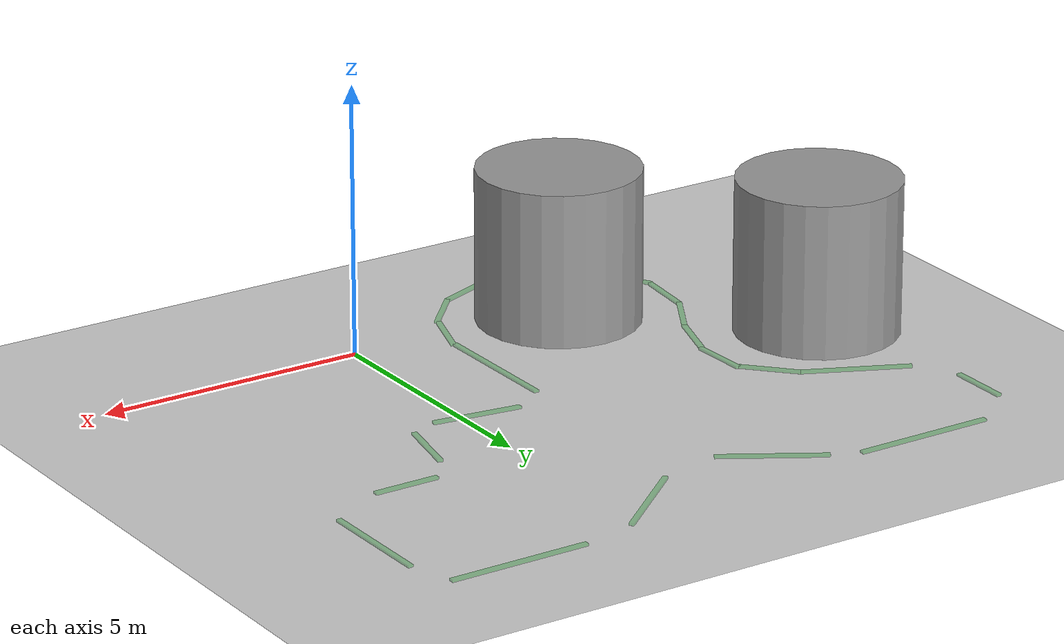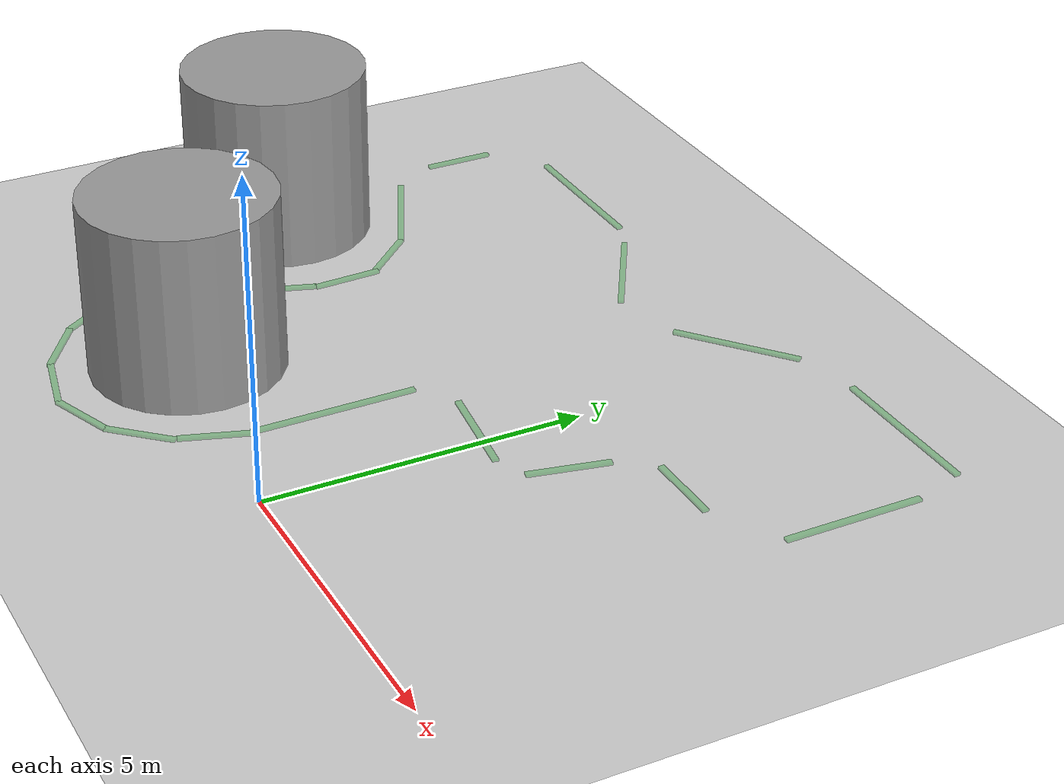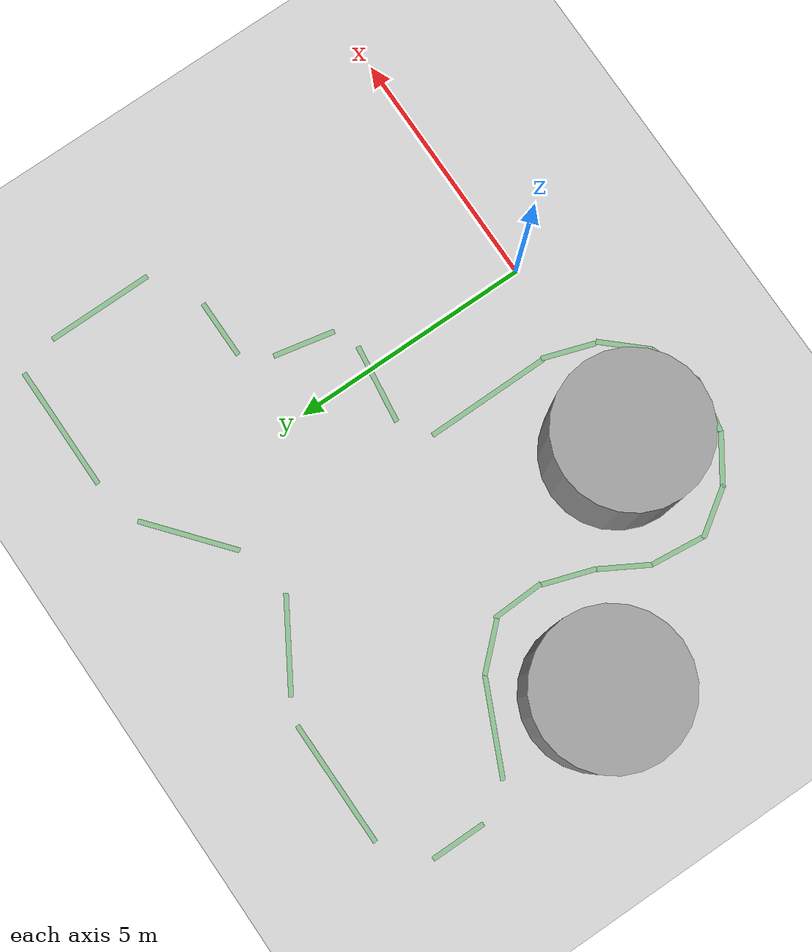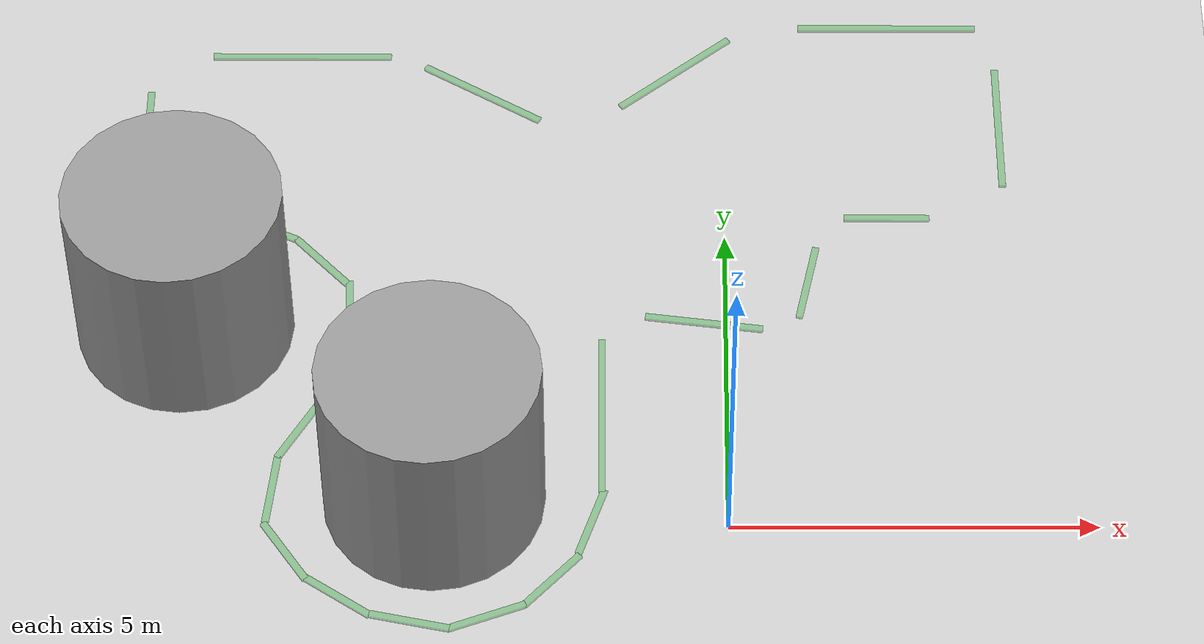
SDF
<sdf version="1.7">
 <world name="default">
  <model name="ground_plane">
   <static>1</static>
   <link name="link">
    <collision name="collision">
     <geometry><plane><normal>0 0 1</normal><size>100 100</size></plane></geometry>
     <surface>
      <contact><collide_bitmask>65535</collide_bitmask></contact>
      <friction><ode><mu>100</mu><mu2>50</mu2></ode></friction>
     </surface>
    </collision>
    <visual name="visual">
     <cast_shadows>0</cast_shadows>
     <geometry><plane><normal>0 0 1</normal><size>100 100</size></plane></geometry>
     <material>
      <script><uri>file://media/materials/scripts/gazebo.material</uri><name>Gazebo/Grey</name></script>
     </material>
    </visual>
   </link>
  </model>
  <model name="cylinders">
   <link name="link_0">
    <inertial>
     <mass>27.0554</mass>
     <inertia><ixx>35.4234</ixx><ixy>0</ixy><ixz>0</ixz><iyy>35.4234</iyy><iyz>0</iyz><izz>30.643</izz></inertia>
    </inertial>
    <pose>1.76981 -1.47528 0 0 -0 0</pose>
    <visual name="visual">
     <geometry><cylinder><radius>1.50506</radius><length>2.98594</length></cylinder></geometry>
     <material>
      <lighting>1</lighting>
      <script><uri>file://media/materials/scripts/gazebo.material</uri><name>Gazebo/Grey</name></script>
      <shader type="pixel"><normal_map>__default__</normal_map></shader>
      <ambient>0.3 0.3 0.3 1</ambient>
      <diffuse>0.7 0.7 0.7 1</diffuse>
      <specular>0.01 0.01 0.01 1</specular>
      <emissive>0 0 0 1</emissive>
     </material>
    </visual>
    <collision name="collision">
     <geometry><cylinder><radius>1.50506</radius><length>2.98594</length></cylinder></geometry>
     <surface>
      <friction>
       <ode><mu>1</mu><mu2>1</mu2><fdir1>0 0 0</fdir1><slip1>0</slip1><slip2>0</slip2></ode>
       <torsional>
        <coefficient>1</coefficient>
        <patch_radius>0</patch_radius>
        <surface_radius>0</surface_radius>
        <use_patch_radius>1</use_patch_radius>
        <ode><slip>0</slip></ode>
       </torsional>
      </friction>
      <bounce><restitution_coefficient>0</restitution_coefficient><threshold>1e+06</threshold></bounce>
      <contact>
       <collide_without_contact>0</collide_without_contact>
       <collide_without_contact_bitmask>1</collide_without_contact_bitmask>
       <collide_bitmask>1</collide_bitmask>
       <ode>
        <soft_cfm>0</soft_cfm>
        <soft_erp>0.2</soft_erp>
        <kp>1e+13</kp>
        <kd>1</kd>
        <max_vel>0.01</max_vel>
        <min_depth>0</min_depth>
       </ode>
       <bullet>
        <split_impulse>1</split_impulse>
        <split_impulse_penetration_threshold>-0.01</split_impulse_penetration_threshold>
        <soft_cfm>0</soft_cfm>
        <soft_erp>0.2</soft_erp>
        <kp>1e+13</kp>
        <kd>1</kd>
       </bullet>
      </contact>
     </surface>
    </collision>
   </link>
   <link name="link_0_clone">
    <inertial>
     <mass>27.0554</mass>
     <inertia><ixx>35.4234</ixx><ixy>0</ixy><ixz>0</ixz><iyy>35.4234</iyy><iyz>0</iyz><izz>30.643</izz></inertia>
    </inertial>
    <pose>-1.76982 1.47528 0 0 -0 0</pose>
    <visual name="visual">
     <geometry><cylinder><radius>1.50506</radius><length>2.98594</length></cylinder></geometry>
     <material>
      <lighting>1</lighting>
      <script><uri>file://media/materials/scripts/gazebo.material</uri><name>Gazebo/Grey</name></script>
      <shader type="pixel"><normal_map>__default__</normal_map></shader>
     </material>
    </visual>
    <collision name="collision">
     <geometry><cylinder><radius>1.50506</radius><length>2.98594</length></cylinder></geometry>
     <surface>
      <friction>
       <ode><mu>1</mu><mu2>1</mu2><fdir1>0 0 0</fdir1><slip1>0</slip1><slip2>0</slip2></ode>
       <torsional>
        <coefficient>1</coefficient>
        <patch_radius>0</patch_radius>
        <surface_radius>0</surface_radius>
        <use_patch_radius>1</use_patch_radius>
        <ode><slip>0</slip></ode>
       </torsional>
      </friction>
      <bounce><restitution_coefficient>0</restitution_coefficient><threshold>1e+06</threshold></bounce>
      <contact>
       <collide_without_contact>0</collide_without_contact>
       <collide_without_contact_bitmask>1</collide_without_contact_bitmask>
       <collide_bitmask>1</collide_bitmask>
       <ode>
        <soft_cfm>0</soft_cfm>
        <soft_erp>0.2</soft_erp>
        <kp>1e+13</kp>
        <kd>1</kd>
        <max_vel>0.01</max_vel>
        <min_depth>0</min_depth>
       </ode>
       <bullet>
        <split_impulse>1</split_impulse>
        <split_impulse_penetration_threshold>-0.01</split_impulse_penetration_threshold>
        <soft_cfm>0</soft_cfm>
        <soft_erp>0.2</soft_erp>
        <kp>1e+13</kp>
        <kd>1</kd>
       </bullet>
      </contact>
     </surface>
    </collision>
   </link>
   <static>1</static>
   <pose>-5.7497 1.93405 1.35159 0 -0 0</pose>
  </model>
  <model name="map_2_spawn">
   <link name="spawn_1">
    <inertial>
     <mass>1</mass>
     <inertia>
      <ixx>0.166667</ixx>
      <ixy>0</ixy>
      <ixz>0</ixz>
      <iyy>0.166667</iyy>
      <iyz>0</iyz>
      <izz>0.166667</izz>
     </inertia>
    </inertial>
    <pose>-5.15984 3.69945 -0 0 -0 0</pose>
    <visual name="visual">
     <geometry><box><size>0.095881 1.14275 0.053681</size></box></geometry>
     <material>
      <lighting>1</lighting>
      <script><uri>file://media/materials/scripts/gazebo.material</uri><name>Gazebo/Green</name></script>
      <shader type="pixel"><normal_map>__default__</normal_map></shader>
      <ambient>0 1 0 1</ambient>
      <diffuse>0 1 0 1</diffuse>
      <specular>0.1 0.1 0.1 1</specular>
      <emissive>0 0 0 1</emissive>
     </material>
     <transparency>0.6</transparency>
    </visual>
   </link>
   <link name="spawn_2">
    <inertial>
     <mass>1</mass>
     <inertia>
      <ixx>0.166667</ixx>
      <ixy>0</ixy>
      <ixz>0</ixz>
      <iyy>0.166667</iyy>
      <iyz>0</iyz>
      <izz>0.166667</izz>
     </inertia>
    </inertial>
    <pose>-2.99724 4.97804 -0 0 0 -1.56983</pose>
    <visual name="visual">
     <geometry><box><size>0.095881 2.60411 0.053681</size></box></geometry>
     <material>
      <lighting>1</lighting>
      <script><uri>file://media/materials/scripts/gazebo.material</uri><name>Gazebo/Green</name></script>
      <shader type="pixel"><normal_map>__default__</normal_map></shader>
      <ambient>0 1 0 1</ambient>
      <diffuse>0 1 0 1</diffuse>
      <specular>0.1 0.1 0.1 1</specular>
      <emissive>0 0 0 1</emissive>
     </material>
     <transparency>0.6</transparency>
    </visual>
   </link>
   <link name="spawn_3">
    <inertial>
     <mass>1</mass>
     <inertia>
      <ixx>0.166667</ixx>
      <ixy>0</ixy>
      <ixz>0</ixz>
      <iyy>0.166667</iyy>
      <iyz>0</iyz>
      <izz>0.166667</izz>
     </inertia>
    </inertial>
    <pose>-0.349247 4.27348 -0 0 0 -2.11481</pose>
    <visual name="visual">
     <geometry><box><size>0.095881 1.95406 0.053681</size></box></geometry>
     <material>
      <lighting>1</lighting>
      <script><uri>file://media/materials/scripts/gazebo.material</uri><name>Gazebo/Green</name></script>
      <shader type="pixel"><normal_map>__default__</normal_map></shader>
      <ambient>0 1 0 1</ambient>
      <diffuse>0 1 0 1</diffuse>
      <specular>0.1 0.1 0.1 1</specular>
      <emissive>0 0 0 1</emissive>
     </material>
     <transparency>0.6</transparency>
    </visual>
   </link>
   <link name="spawn_4">
    <inertial>
     <mass>1</mass>
     <inertia>
      <ixx>0.166667</ixx>
      <ixy>0</ixy>
      <ixz>0</ixz>
      <iyy>0.166667</iyy>
      <iyz>0</iyz>
      <izz>0.166667</izz>
     </inertia>
    </inertial>
    <pose>2.4418 4.68096 -0 0 0 -0.879866</pose>
    <visual name="visual">
     <geometry><box><size>0.095881 2.03188 0.053681</size></box></geometry>
     <material>
      <lighting>1</lighting>
      <script><uri>file://media/materials/scripts/gazebo.material</uri><name>Gazebo/Green</name></script>
      <shader type="pixel"><normal_map>__default__</normal_map></shader>
      <ambient>0 1 0 1</ambient>
      <diffuse>0 1 0 1</diffuse>
      <specular>0.1 0.1 0.1 1</specular>
      <emissive>0 0 0 1</emissive>
     </material>
     <transparency>0.6</transparency>
    </visual>
   </link>
   <link name="spawn_5">
    <inertial>
     <mass>1</mass>
     <inertia>
      <ixx>0.166667</ixx>
      <ixy>0</ixy>
      <ixz>0</ixz>
      <iyy>0.166667</iyy>
      <iyz>0</iyz>
      <izz>0.166667</izz>
     </inertia>
    </inertial>
    <pose>5.5557 5.56367 -0 0 0 -1.56983</pose>
    <visual name="visual">
     <geometry><box><size>0.095881 2.60411 0.053681</size></box></geometry>
     <material>
      <lighting>1</lighting>
      <script><uri>file://media/materials/scripts/gazebo.material</uri><name>Gazebo/Green</name></script>
      <shader type="pixel"><normal_map>__default__</normal_map></shader>
      <ambient>0 1 0 1</ambient>
      <diffuse>0 1 0 1</diffuse>
      <specular>0.1 0.1 0.1 1</specular>
      <emissive>0 0 0 1</emissive>
     </material>
     <transparency>0.6</transparency>
    </visual>
   </link>
   <link name="spawn_6">
    <inertial>
     <mass>1</mass>
     <inertia>
      <ixx>0.166667</ixx>
      <ixy>0</ixy>
      <ixz>0</ixz>
      <iyy>0.166667</iyy>
      <iyz>0</iyz>
      <izz>0.166667</izz>
     </inertia>
    </inertial>
    <pose>7.11217 3.65327 -0 0 -0 0.004908</pose>
    <visual name="visual">
     <geometry><box><size>0.095881 2.19994 0.053681</size></box></geometry>
     <material>
      <lighting>1</lighting>
      <script><uri>file://media/materials/scripts/gazebo.material</uri><name>Gazebo/Green</name></script>
      <shader type="pixel"><normal_map>__default__</normal_map></shader>
      <ambient>0 1 0 1</ambient>
      <diffuse>0 1 0 1</diffuse>
      <specular>0.1 0.1 0.1 1</specular>
      <emissive>0 0 0 1</emissive>
     </material>
     <transparency>0.6</transparency>
    </visual>
   </link>
   <link name="spawn_7">
    <inertial>
     <mass>1</mass>
     <inertia>
      <ixx>0.166667</ixx>
      <ixy>0</ixy>
      <ixz>0</ixz>
      <iyy>0.166667</iyy>
      <iyz>0</iyz>
      <izz>0.166667</izz>
     </inertia>
    </inertial>
    <pose>5.43994 1.95606 -0 0 0 -1.56983</pose>
    <visual name="visual">
     <geometry><box><size>0.095881 1.21596 0.053681</size></box></geometry>
     <material>
      <lighting>1</lighting>
      <script><uri>file://media/materials/scripts/gazebo.material</uri><name>Gazebo/Green</name></script>
      <shader type="pixel"><normal_map>__default__</normal_map></shader>
      <ambient>0 1 0 1</ambient>
      <diffuse>0 1 0 1</diffuse>
      <specular>0.1 0.1 0.1 1</specular>
      <emissive>0 0 0 1</emissive>
     </material>
     <transparency>0.6</transparency>
    </visual>
   </link>
   <link name="spawn_8">
    <inertial>
     <mass>1</mass>
     <inertia>
      <ixx>0.166667</ixx>
      <ixy>0</ixy>
      <ixz>0</ixz>
      <iyy>0.166667</iyy>
      <iyz>0</iyz>
      <izz>0.166667</izz>
     </inertia>
    </inertial>
    <pose>4.29214 0.78239 -0 0 -0 2.93619</pose>
    <visual name="visual">
     <geometry><box><size>0.095881 1.26839 0.053681</size></box></geometry>
     <material>
      <lighting>1</lighting>
      <script><uri>file://media/materials/scripts/gazebo.material</uri><name>Gazebo/Green</name></script>
      <shader type="pixel"><normal_map>__default__</normal_map></shader>
      <ambient>0 1 0 1</ambient>
      <diffuse>0 1 0 1</diffuse>
      <specular>0.1 0.1 0.1 1</specular>
      <emissive>0 0 0 1</emissive>
     </material>
     <transparency>0.6</transparency>
    </visual>
   </link>
   <link name="spawn_9">
    <inertial>
     <mass>1</mass>
     <inertia>
      <ixx>0.166667</ixx>
      <ixy>0</ixy>
      <ixz>0</ixz>
      <iyy>0.166667</iyy>
      <iyz>0</iyz>
      <izz>0.166667</izz>
     </inertia>
    </inertial>
    <pose>2.8348 0.060357 -0 0 0 -1.70192</pose>
    <visual name="visual">
     <geometry><box><size>0.095881 1.65188 0.053681</size></box></geometry>
     <material>
      <lighting>1</lighting>
      <script><uri>file://media/materials/scripts/gazebo.material</uri><name>Gazebo/Green</name></script>
      <shader type="pixel"><normal_map>__default__</normal_map></shader>
      <ambient>0 1 0 1</ambient>
      <diffuse>0 1 0 1</diffuse>
      <specular>0.1 0.1 0.1 1</specular>
      <emissive>0 0 0 1</emissive>
     </material>
     <transparency>0.6</transparency>
    </visual>
   </link>
   <link name="spawn_10">
    <inertial>
     <mass>1</mass>
     <inertia>
      <ixx>0.166667</ixx>
      <ixy>0</ixy>
      <ixz>0</ixz>
      <iyy>0.166667</iyy>
      <iyz>0</iyz>
      <izz>0.166667</izz>
     </inertia>
    </inertial>
    <pose>1.42125 -1.55195 -0 0 -0 0.005819</pose>
    <visual name="visual">
     <geometry><box><size>0.095881 2.60411 0.053681</size></box></geometry>
     <material>
      <lighting>1</lighting>
      <script><uri>file://media/materials/scripts/gazebo.material</uri><name>Gazebo/Green</name></script>
      <shader type="pixel"><normal_map>__default__</normal_map></shader>
      <ambient>0 1 0 1</ambient>
      <diffuse>0 1 0 1</diffuse>
      <specular>0.1 0.1 0.1 1</specular>
      <emissive>0 0 0 1</emissive>
     </material>
     <transparency>0.6</transparency>
    </visual>
   </link>
   <link name="spawn_11">
    <inertial>
     <mass>1</mass>
     <inertia>
      <ixx>0.166667</ixx>
      <ixy>0</ixy>
      <ixz>0</ixz>
      <iyy>0.166667</iyy>
      <iyz>0</iyz>
      <izz>0.166667</izz>
     </inertia>
    </inertial>
    <pose>1.28966 -3.35226 -0 0 0 -0.320064</pose>
    <visual name="visual">
     <geometry><box><size>0.095881 1.10008 0.053681</size></box></geometry>
     <material>
      <lighting>1</lighting>
      <script><uri>file://media/materials/scripts/gazebo.material</uri><name>Gazebo/Green</name></script>
      <shader type="pixel"><normal_map>__default__</normal_map></shader>
      <ambient>0 1 0 1</ambient>
      <diffuse>0 1 0 1</diffuse>
      <specular>0.1 0.1 0.1 1</specular>
      <emissive>0 0 0 1</emissive>
     </material>
     <transparency>0.6</transparency>
    </visual>
   </link>
   <link name="spawn_12">
    <inertial>
     <mass>1</mass>
     <inertia>
      <ixx>0.166667</ixx>
      <ixy>0</ixy>
      <ixz>0</ixz>
      <iyy>0.166667</iyy>
      <iyz>0</iyz>
      <izz>0.166667</izz>
     </inertia>
    </inertial>
    <pose>0.770118 -4.30328 -0 0 0 -0.737399</pose>
    <visual name="visual">
     <geometry><box><size>0.095881 1.10008 0.053681</size></box></geometry>
     <material>
      <lighting>1</lighting>
      <script><uri>file://media/materials/scripts/gazebo.material</uri><name>Gazebo/Green</name></script>
      <shader type="pixel"><normal_map>__default__</normal_map></shader>
      <ambient>0 1 0 1</ambient>
      <diffuse>0 1 0 1</diffuse>
      <specular>0.1 0.1 0.1 1</specular>
      <emissive>0 0 0 1</emissive>
     </material>
     <transparency>0.6</transparency>
    </visual>
   </link>
   <link name="spawn_13">
    <inertial>
     <mass>1</mass>
     <inertia>
      <ixx>0.166667</ixx>
      <ixy>0</ixy>
      <ixz>0</ixz>
      <iyy>0.166667</iyy>
      <iyz>0</iyz>
      <izz>0.166667</izz>
     </inertia>
    </inertial>
    <pose>-0.087084 -4.88907 -0 0 0 -1.20498</pose>
    <visual name="visual">
     <geometry><box><size>0.095881 1.10008 0.053681</size></box></geometry>
     <material>
      <lighting>1</lighting>
      <script><uri>file://media/materials/scripts/gazebo.material</uri><name>Gazebo/Green</name></script>
      <shader type="pixel"><normal_map>__default__</normal_map></shader>
      <ambient>0 1 0 1</ambient>
      <diffuse>0 1 0 1</diffuse>
      <specular>0.1 0.1 0.1 1</specular>
      <emissive>0 0 0 1</emissive>
     </material>
     <transparency>0.6</transparency>
    </visual>
   </link>
   <link name="spawn_14">
    <inertial>
     <mass>1</mass>
     <inertia>
      <ixx>0.166667</ixx>
      <ixy>0</ixy>
      <ixz>0</ixz>
      <iyy>0.166667</iyy>
      <iyz>0</iyz>
      <izz>0.166667</izz>
     </inertia>
    </inertial>
    <pose>-1.11299 -4.96881 -0 0 0 -1.78016</pose>
    <visual name="visual">
     <geometry><box><size>0.095881 1.10008 0.053681</size></box></geometry>
     <material>
      <lighting>1</lighting>
      <script><uri>file://media/materials/scripts/gazebo.material</uri><name>Gazebo/Green</name></script>
      <shader type="pixel"><normal_map>__default__</normal_map></shader>
      <ambient>0 1 0 1</ambient>
      <diffuse>0 1 0 1</diffuse>
      <specular>0.1 0.1 0.1 1</specular>
      <emissive>0 0 0 1</emissive>
     </material>
     <transparency>0.6</transparency>
    </visual>
   </link>
   <link name="spawn_15">
    <inertial>
     <mass>1</mass>
     <inertia>
      <ixx>0.166667</ixx>
      <ixy>0</ixy>
      <ixz>0</ixz>
      <iyy>0.166667</iyy>
      <iyz>0</iyz>
      <izz>0.166667</izz>
     </inertia>
    </inertial>
    <pose>-2.09573 -4.56414 -0 0 -0 0.972828</pose>
    <visual name="visual">
     <geometry><box><size>0.095881 1.10008 0.053681</size></box></geometry>
     <material>
      <lighting>1</lighting>
      <script><uri>file://media/materials/scripts/gazebo.material</uri><name>Gazebo/Green</name></script>
      <shader type="pixel"><normal_map>__default__</normal_map></shader>
      <ambient>0 1 0 1</ambient>
      <diffuse>0 1 0 1</diffuse>
      <specular>0.1 0.1 0.1 1</specular>
      <emissive>0 0 0 1</emissive>
     </material>
     <transparency>0.6</transparency>
    </visual>
   </link>
   <link name="spawn_16">
    <inertial>
     <mass>1</mass>
     <inertia>
      <ixx>0.166667</ixx>
      <ixy>0</ixy>
      <ixz>0</ixz>
      <iyy>0.166667</iyy>
      <iyz>0</iyz>
      <izz>0.166667</izz>
     </inertia>
    </inertial>
    <pose>-2.82591 -3.84279 -0 0 -0 0.593422</pose>
    <visual name="visual">
     <geometry><box><size>0.095881 1.10008 0.053681</size></box></geometry>
     <material>
      <lighting>1</lighting>
      <script><uri>file://media/materials/scripts/gazebo.material</uri><name>Gazebo/Green</name></script>
      <shader type="pixel"><normal_map>__default__</normal_map></shader>
      <ambient>0 1 0 1</ambient>
      <diffuse>0 1 0 1</diffuse>
      <specular>0.1 0.1 0.1 1</specular>
      <emissive>0 0 0 1</emissive>
     </material>
     <transparency>0.6</transparency>
    </visual>
   </link>
   <link name="spawn_17">
    <inertial>
     <mass>1</mass>
     <inertia>
      <ixx>0.166667</ixx>
      <ixy>0</ixy>
      <ixz>0</ixz>
      <iyy>0.166667</iyy>
      <iyz>0</iyz>
      <izz>0.166667</izz>
     </inertia>
    </inertial>
    <pose>-3.0501 -2.8282 -0 0 0 -0.106657</pose>
    <visual name="visual">
     <geometry><box><size>0.095881 1.10008 0.053681</size></box></geometry>
     <material>
      <lighting>1</lighting>
      <script><uri>file://media/materials/scripts/gazebo.material</uri><name>Gazebo/Green</name></script>
      <shader type="pixel"><normal_map>__default__</normal_map></shader>
      <ambient>0 1 0 1</ambient>
      <diffuse>0 1 0 1</diffuse>
      <specular>0.1 0.1 0.1 1</specular>
      <emissive>0 0 0 1</emissive>
     </material>
     <transparency>0.6</transparency>
    </visual>
   </link>
   <link name="spawn_18">
    <inertial>
     <mass>1</mass>
     <inertia>
      <ixx>0.166667</ixx>
      <ixy>0</ixy>
      <ixz>0</ixz>
      <iyy>0.166667</iyy>
      <iyz>0</iyz>
      <izz>0.166667</izz>
     </inertia>
    </inertial>
    <pose>-2.7278 -1.82003 -0 0 0 -0.519876</pose>
    <visual name="visual">
     <geometry><box><size>0.095881 1.10008 0.053681</size></box></geometry>
     <material>
      <lighting>1</lighting>
      <script><uri>file://media/materials/scripts/gazebo.material</uri><name>Gazebo/Green</name></script>
      <shader type="pixel"><normal_map>__default__</normal_map></shader>
      <ambient>0 1 0 1</ambient>
      <diffuse>0 1 0 1</diffuse>
      <specular>0.1 0.1 0.1 1</specular>
      <emissive>0 0 0 1</emissive>
     </material>
     <transparency>0.6</transparency>
    </visual>
   </link>
   <link name="spawn_19">
    <inertial>
     <mass>1</mass>
     <inertia>
      <ixx>0.166667</ixx>
      <ixy>0</ixy>
      <ixz>0</ixz>
      <iyy>0.166667</iyy>
      <iyz>0</iyz>
      <izz>0.166667</izz>
     </inertia>
    </inertial>
    <pose>-2.28677 -0.841378 -0 0 0 -0.320064</pose>
    <visual name="visual">
     <geometry><box><size>0.095881 1.10008 0.053681</size></box></geometry>
     <material>
      <lighting>1</lighting>
      <script><uri>file://media/materials/scripts/gazebo.material</uri><name>Gazebo/Green</name></script>
      <shader type="pixel"><normal_map>__default__</normal_map></shader>
      <ambient>0 1 0 1</ambient>
      <diffuse>0 1 0 1</diffuse>
      <specular>0.1 0.1 0.1 1</specular>
      <emissive>0 0 0 1</emissive>
     </material>
     <transparency>0.6</transparency>
    </visual>
   </link>
   <link name="spawn_20">
    <inertial>
     <mass>1</mass>
     <inertia>
      <ixx>0.166667</ixx>
      <ixy>0</ixy>
      <ixz>0</ixz>
      <iyy>0.166667</iyy>
      <iyz>0</iyz>
      <izz>0.166667</izz>
     </inertia>
    </inertial>
    <pose>-2.11516 0.224019 -0 0 -0 0.040494</pose>
    <visual name="visual">
     <geometry><box><size>0.095881 1.10008 0.053681</size></box></geometry>
     <material>
      <lighting>1</lighting>
      <script><uri>file://media/materials/scripts/gazebo.material</uri><name>Gazebo/Green</name></script>
      <shader type="pixel"><normal_map>__default__</normal_map></shader>
      <ambient>0 1 0 1</ambient>
      <diffuse>0 1 0 1</diffuse>
      <specular>0.1 0.1 0.1 1</specular>
      <emissive>0 0 0 1</emissive>
     </material>
     <transparency>0.6</transparency>
    </visual>
   </link>
   <link name="spawn_21">
    <inertial>
     <mass>1</mass>
     <inertia>
      <ixx>0.166667</ixx>
      <ixy>0</ixy>
      <ixz>0</ixz>
      <iyy>0.166667</iyy>
      <iyz>0</iyz>
      <izz>0.166667</izz>
     </inertia>
    </inertial>
    <pose>-2.54026 1.13762 -0 0 0 -2.39094</pose>
    <visual name="visual">
     <geometry><box><size>0.095881 1.10008 0.053681</size></box></geometry>
     <material>
      <lighting>1</lighting>
      <script><uri>file://media/materials/scripts/gazebo.material</uri><name>Gazebo/Green</name></script>
      <shader type="pixel"><normal_map>__default__</normal_map></shader>
      <ambient>0 1 0 1</ambient>
      <diffuse>0 1 0 1</diffuse>
      <specular>0.1 0.1 0.1 1</specular>
      <emissive>0 0 0 1</emissive>
     </material>
     <transparency>0.6</transparency>
    </visual>
   </link>
   <link name="spawn_22">
    <inertial>
     <mass>1</mass>
     <inertia>
      <ixx>0.166667</ixx>
      <ixy>0</ixy>
      <ixz>0</ixz>
      <iyy>0.166667</iyy>
      <iyz>0</iyz>
      <izz>0.166667</izz>
     </inertia>
    </inertial>
    <pose>-3.80944 1.9526 -0 0 0 -2.00633</pose>
    <visual name="visual">
     <geometry><box><size>0.095881 1.98564 0.053681</size></box></geometry>
     <material>
      <lighting>1</lighting>
      <script><uri>file://media/materials/scripts/gazebo.material</uri><name>Gazebo/Green</name></script>
      <shader type="pixel"><normal_map>__default__</normal_map></shader>
      <ambient>0 1 0 1</ambient>
      <diffuse>0 1 0 1</diffuse>
      <specular>0.1 0.1 0.1 1</specular>
      <emissive>0 0 0 1</emissive>
     </material>
     <transparency>0.6</transparency>
    </visual>
   </link>
   <static>1</static>
   <pose>-3.14077 3.4164 -0 0 -0 0</pose>
  </model>
 </world>
</sdf>
